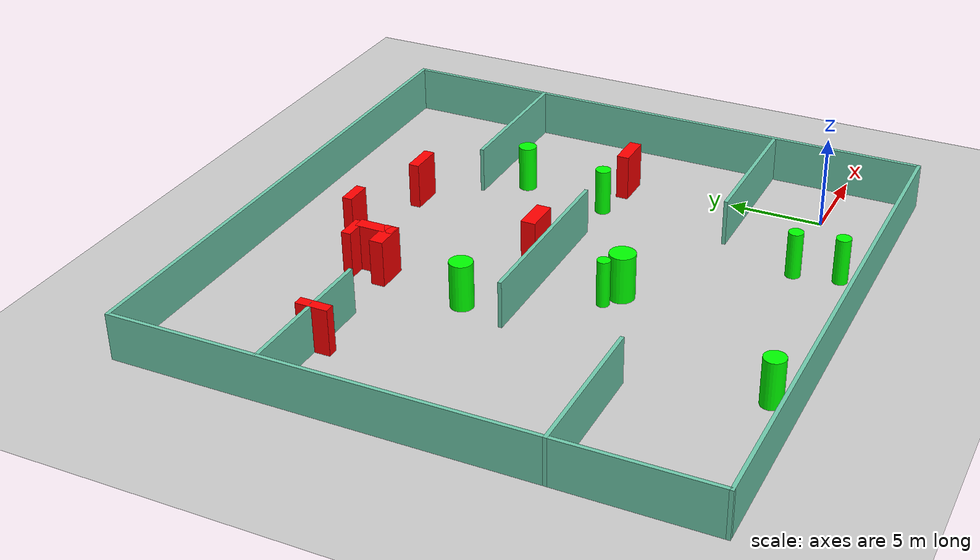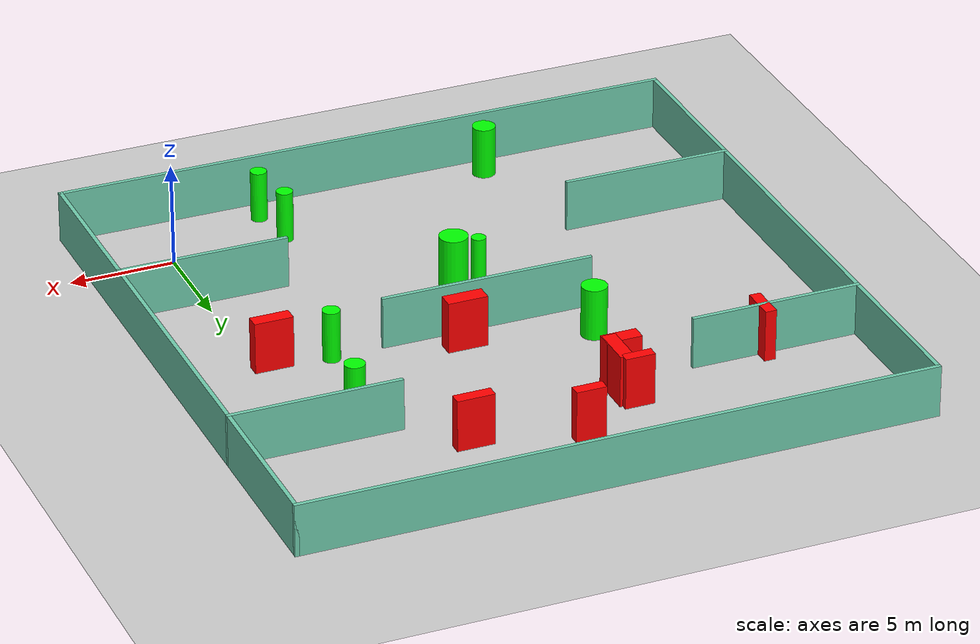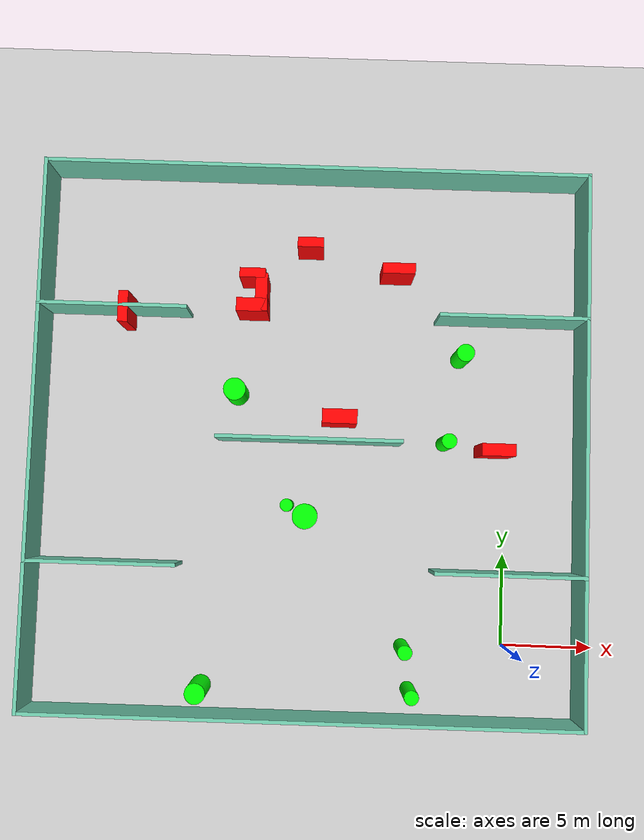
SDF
<sdf version="1.7">
 <world name="default">
  <light name="sun" type="directional">
   <pose>0 0 10 0 -0 0</pose>
   <diffuse>0.8 0.8 0.8 1</diffuse>
   <specular>0.2 0.2 0.2 1</specular>
   <attenuation>
    <range>1000</range>
    <constant>0.9</constant>
    <linear>0.01</linear>
    <quadratic>0.001</quadratic>
   </attenuation>
   <direction>-0.5 0.1 -0.9</direction>
   <spot><inner_angle>0</inner_angle><outer_angle>0</outer_angle><falloff>0</falloff></spot>
  </light>
  <model name="ground_plane">
   <static>1</static>
   <link name="link">
    <collision name="collision">
     <geometry><plane><normal>0 0 1</normal><size>100 100</size></plane></geometry>
     <surface>
      <contact><collide_bitmask>65535</collide_bitmask></contact>
      <friction><ode><mu>100</mu><mu2>50</mu2></ode></friction>
     </surface>
    </collision>
    <visual name="visual">
     <cast_shadows>0</cast_shadows>
     <geometry><plane><normal>0 0 1</normal><size>100 100</size></plane></geometry>
     <material>
      <script><uri>file://media/materials/scripts/gazebo.material</uri><name>Gazebo/Grey</name></script>
     </material>
    </visual>
   </link>
  </model>
  <gravity>0 0 -9.8</gravity>
  <magnetic_field>6e-06 2.3e-05 -4.2e-05</magnetic_field>
  <atmosphere type="adiabatic"/>
  <physics type="ode">
   <max_step_size>0.001</max_step_size>
   <real_time_factor>1</real_time_factor>
   <real_time_update_rate>1000</real_time_update_rate>
  </physics>
  <scene><ambient>0.4 0.4 0.4 1</ambient><background>0.7 0.7 0.7 1</background><shadows>1</shadows></scene>
  <spherical_coordinates>
   <surface_model>EARTH_WGS84</surface_model>
   <latitude_deg>0</latitude_deg>
   <longitude_deg>0</longitude_deg>
   <elevation>0</elevation>
   <heading_deg>0</heading_deg>
  </spherical_coordinates>
  <model name="my_base_walls">
   <link name="Wall_10">
    <collision name="Wall_10_Collision">
     <geometry><box><size>8.2 0.2 2.5</size></box></geometry>
     <pose>0 0 1.25 0 -0 0</pose>
    </collision>
    <visual name="Wall_10_Visual">
     <pose>0 0 1.25 0 -0 0</pose>
     <geometry><box><size>8.2 0.2 2.5</size></box></geometry>
     <material>
      <script><uri>file://media/materials/scripts/gazebo.material</uri><name>Gazebo/Grey</name></script>
      <ambient>0.435294 0.796078 0.67451 1</ambient>
     </material>
     <meta><layer>0</layer></meta>
    </visual>
    <pose>-11 -7 0 0 -0 0</pose>
   </link>
   <link name="Wall_12">
    <collision name="Wall_12_Collision">
     <geometry><box><size>8.2 0.2 2.5</size></box></geometry>
     <pose>0 0 1.25 0 -0 0</pose>
    </collision>
    <visual name="Wall_12_Visual">
     <pose>0 0 1.25 0 -0 0</pose>
     <geometry><box><size>8.2 0.2 2.5</size></box></geometry>
     <material>
      <script><uri>file://media/materials/scripts/gazebo.material</uri><name>Gazebo/Grey</name></script>
      <ambient>0.435294 0.796078 0.67451 1</ambient>
     </material>
     <meta><layer>0</layer></meta>
    </visual>
    <pose>-11 7 0 0 -0 0</pose>
   </link>
   <link name="Wall_14">
    <collision name="Wall_14_Collision">
     <geometry><box><size>8.2 0.2 2.5</size></box></geometry>
     <pose>0 0 1.25 0 -0 0</pose>
    </collision>
    <visual name="Wall_14_Visual">
     <pose>0 0 1.25 0 -0 0</pose>
     <geometry><box><size>8.2 0.2 2.5</size></box></geometry>
     <material>
      <script><uri>file://media/materials/scripts/gazebo.material</uri><name>Gazebo/Grey</name></script>
      <ambient>0.435294 0.796078 0.67451 1</ambient>
     </material>
     <meta><layer>0</layer></meta>
    </visual>
    <pose>11 7 0 0 -0 3.14159</pose>
   </link>
   <link name="Wall_16">
    <collision name="Wall_16_Collision">
     <geometry><box><size>10.2 0.2 2.5</size></box></geometry>
     <pose>0 0 1.25 0 -0 0</pose>
    </collision>
    <visual name="Wall_16_Visual">
     <pose>0 0 1.25 0 -0 0</pose>
     <geometry><box><size>10.2 0.2 2.5</size></box></geometry>
     <material>
      <script><uri>file://media/materials/scripts/gazebo.material</uri><name>Gazebo/Grey</name></script>
      <ambient>0.435294 0.796078 0.67451 1</ambient>
     </material>
     <meta><layer>0</layer></meta>
    </visual>
    <pose>0 0 0 0 -0 3.14159</pose>
   </link>
   <link name="Wall_2">
    <collision name="Wall_2_Collision">
     <geometry><box><size>30.2 0.2 2.5</size></box></geometry>
     <pose>0 0 1.25 0 -0 0</pose>
    </collision>
    <visual name="Wall_2_Visual">
     <pose>0 0 1.25 0 -0 0</pose>
     <geometry><box><size>30.2 0.2 2.5</size></box></geometry>
     <material>
      <script><uri>file://media/materials/scripts/gazebo.material</uri><name>Gazebo/Grey</name></script>
      <ambient>0.435294 0.796078 0.67451 1</ambient>
     </material>
     <meta><layer>0</layer></meta>
    </visual>
    <pose>0 -15 0 0 -0 3.14159</pose>
   </link>
   <link name="Wall_3">
    <collision name="Wall_3_Collision">
     <geometry><box><size>30.2 0.2 2.5</size></box></geometry>
     <pose>0 0 1.25 0 -0 0</pose>
    </collision>
    <visual name="Wall_3_Visual">
     <pose>0 0 1.25 0 -0 0</pose>
     <geometry><box><size>30.2 0.2 2.5</size></box></geometry>
     <material>
      <script><uri>file://media/materials/scripts/gazebo.material</uri><name>Gazebo/Grey</name></script>
      <ambient>0.435294 0.796078 0.67451 1</ambient>
     </material>
     <meta><layer>0</layer></meta>
    </visual>
    <pose>-15 0 0 0 -0 1.5708</pose>
   </link>
   <link name="Wall_4">
    <collision name="Wall_4_Collision">
     <geometry><box><size>30.2 0.2 2.5</size></box></geometry>
     <pose>0 0 1.25 0 -0 0</pose>
    </collision>
    <visual name="Wall_4_Visual">
     <pose>0 0 1.25 0 -0 0</pose>
     <geometry><box><size>30.2 0.2 2.5</size></box></geometry>
     <material>
      <script><uri>file://media/materials/scripts/gazebo.material</uri><name>Gazebo/Grey</name></script>
      <ambient>0.435294 0.796078 0.67451 1</ambient>
     </material>
     <meta><layer>0</layer></meta>
    </visual>
    <pose>0 15 0 0 -0 0</pose>
   </link>
   <link name="Wall_6">
    <collision name="Wall_6_Collision">
     <geometry><box><size>30.2 0.2 2.5</size></box></geometry>
     <pose>0 0 1.25 0 -0 0</pose>
    </collision>
    <visual name="Wall_6_Visual">
     <pose>0 0 1.25 0 -0 0</pose>
     <geometry><box><size>30.2 0.2 2.5</size></box></geometry>
     <material>
      <script><uri>file://media/materials/scripts/gazebo.material</uri><name>Gazebo/Grey</name></script>
      <ambient>0.435294 0.796078 0.67451 1</ambient>
     </material>
     <meta><layer>0</layer></meta>
    </visual>
    <pose>15 0 0 0 -0 1.5708</pose>
   </link>
   <link name="Wall_8">
    <collision name="Wall_8_Collision">
     <geometry><box><size>8.2 0.2 2.5</size></box></geometry>
     <pose>0 0 1.25 0 -0 0</pose>
    </collision>
    <visual name="Wall_8_Visual">
     <pose>0 0 1.25 0 -0 0</pose>
     <geometry><box><size>8.2 0.2 2.5</size></box></geometry>
     <material>
      <script><uri>file://media/materials/scripts/gazebo.material</uri><name>Gazebo/Grey</name></script>
      <ambient>0.435294 0.796078 0.67451 1</ambient>
     </material>
     <meta><layer>0</layer></meta>
    </visual>
    <pose>11 -7 0 0 -0 3.14159</pose>
   </link>
   <static>1</static>
   <pose>-11 11 0 0 -0 0</pose>
  </model>
  <model name="cylinder1">
   <static>1</static>
   <link name="link">
    <inertial>
     <mass>1</mass>
     <inertia><ixx>0.5</ixx><ixy>0</ixy><ixz>0</ixz><iyy>0.5</iyy><iyz>0</iyz><izz>1</izz></inertia>
    </inertial>
    <collision name="collision">
     <geometry><cylinder><radius>0.48171214003020424</radius><length>2.5</length></cylinder></geometry>
    </collision>
    <visual name="visual">
     <geometry><cylinder><radius>0.48171214003020424</radius><length>2.5</length></cylinder></geometry>
     <material>
      <ambient>0 1 0 1</ambient>
      <diffuse>0 1 0 1</diffuse>
      <specular>0.1 0.1 0.1 1</specular>
      <emissive>0 0 0 0</emissive>
     </material>
    </visual>
   </link>
   <pose>-2.650195115834176 15.918647360431855 1.25 0 0 0</pose>
  </model>
  <model name="cylinder2">
   <static>1</static>
   <link name="link">
    <inertial>
     <mass>1</mass>
     <inertia><ixx>0.5</ixx><ixy>0</ixy><ixz>0</ixz><iyy>0.5</iyy><iyz>0</iyz><izz>1</izz></inertia>
    </inertial>
    <collision name="collision">
     <geometry><cylinder><radius>0.41274147682534174</radius><length>2.5</length></cylinder></geometry>
    </collision>
    <visual name="visual">
     <geometry><cylinder><radius>0.41274147682534174</radius><length>2.5</length></cylinder></geometry>
     <material>
      <ambient>0 1 0 1</ambient>
      <diffuse>0 1 0 1</diffuse>
      <specular>0.1 0.1 0.1 1</specular>
      <emissive>0 0 0 0</emissive>
     </material>
    </visual>
   </link>
   <pose>-3.4428131654437664 11.093458835801629 1.25 0 0 0</pose>
  </model>
  <model name="cylinder3">
   <static>1</static>
   <link name="link">
    <inertial>
     <mass>1</mass>
     <inertia><ixx>0.5</ixx><ixy>0</ixy><ixz>0</ixz><iyy>0.5</iyy><iyz>0</iyz><izz>1</izz></inertia>
    </inertial>
    <collision name="collision">
     <geometry><cylinder><radius>0.6100292864275196</radius><length>2.5</length></cylinder></geometry>
    </collision>
    <visual name="visual">
     <geometry><cylinder><radius>0.6100292864275196</radius><length>2.5</length></cylinder></geometry>
     <material>
      <ambient>0 1 0 1</ambient>
      <diffuse>0 1 0 1</diffuse>
      <specular>0.1 0.1 0.1 1</specular>
      <emissive>0 0 0 0</emissive>
     </material>
    </visual>
   </link>
   <pose>-15.117886761860973 13.547605376320817 1.25 0 0 0</pose>
  </model>
  <model name="cylinder4">
   <static>1</static>
   <link name="link">
    <inertial>
     <mass>1</mass>
     <inertia><ixx>0.5</ixx><ixy>0</ixy><ixz>0</ixz><iyy>0.5</iyy><iyz>0</iyz><izz>1</izz></inertia>
    </inertial>
    <collision name="collision">
     <geometry><cylinder><radius>0.6812378935786482</radius><length>2.5</length></cylinder></geometry>
    </collision>
    <visual name="visual">
     <geometry><cylinder><radius>0.6812378935786482</radius><length>2.5</length></cylinder></geometry>
     <material>
      <ambient>0 1 0 1</ambient>
      <diffuse>0 1 0 1</diffuse>
      <specular>0.1 0.1 0.1 1</specular>
      <emissive>0 0 0 0</emissive>
     </material>
    </visual>
   </link>
   <pose>-11.09788748037177 6.8084319350384686 1.25 0 0 0</pose>
  </model>
  <model name="cylinder5">
   <static>1</static>
   <link name="link">
    <inertial>
     <mass>1</mass>
     <inertia><ixx>0.5</ixx><ixy>0</ixy><ixz>0</ixz><iyy>0.5</iyy><iyz>0</iyz><izz>1</izz></inertia>
    </inertial>
    <collision name="collision">
     <geometry><cylinder><radius>0.5543658335125627</radius><length>2.5</length></cylinder></geometry>
    </collision>
    <visual name="visual">
     <geometry><cylinder><radius>0.5543658335125627</radius><length>2.5</length></cylinder></geometry>
     <material>
      <ambient>0 1 0 1</ambient>
      <diffuse>0 1 0 1</diffuse>
      <specular>0.1 0.1 0.1 1</specular>
      <emissive>0 0 0 0</emissive>
     </material>
    </visual>
   </link>
   <pose>-16.58014880581014 -2.678272176722756 1.25 0 0 0</pose>
  </model>
  <model name="cylinder6">
   <static>1</static>
   <link name="link">
    <inertial>
     <mass>1</mass>
     <inertia><ixx>0.5</ixx><ixy>0</ixy><ixz>0</ixz><iyy>0.5</iyy><iyz>0</iyz><izz>1</izz></inertia>
    </inertial>
    <collision name="collision">
     <geometry><cylinder><radius>0.34373362193548773</radius><length>2.5</length></cylinder></geometry>
    </collision>
    <visual name="visual">
     <geometry><cylinder><radius>0.34373362193548773</radius><length>2.5</length></cylinder></geometry>
     <material>
      <ambient>0 1 0 1</ambient>
      <diffuse>0 1 0 1</diffuse>
      <specular>0.1 0.1 0.1 1</specular>
      <emissive>0 0 0 0</emissive>
     </material>
    </visual>
   </link>
   <pose>-12.095678912463237 7.378022858119266 1.25 0 0 0</pose>
  </model>
  <model name="cylinder7">
   <static>1</static>
   <link name="link">
    <inertial>
     <mass>1</mass>
     <inertia><ixx>0.5</ixx><ixy>0</ixy><ixz>0</ixz><iyy>0.5</iyy><iyz>0</iyz><izz>1</izz></inertia>
    </inertial>
    <collision name="collision">
     <geometry><cylinder><radius>0.3930773407418814</radius><length>2.5</length></cylinder></geometry>
    </collision>
    <visual name="visual">
     <geometry><cylinder><radius>0.3930773407418814</radius><length>2.5</length></cylinder></geometry>
     <material>
      <ambient>0 1 0 1</ambient>
      <diffuse>0 1 0 1</diffuse>
      <specular>0.1 0.1 0.1 1</specular>
      <emissive>0 0 0 0</emissive>
     </material>
    </visual>
   </link>
   <pose>-5.165750554935723 -2.5274832502826383 1.25 0 0 0</pose>
  </model>
  <model name="cylinder8">
   <static>1</static>
   <link name="link">
    <inertial>
     <mass>1</mass>
     <inertia><ixx>0.5</ixx><ixy>0</ixy><ixz>0</ixz><iyy>0.5</iyy><iyz>0</iyz><izz>1</izz></inertia>
    </inertial>
    <collision name="collision">
     <geometry><cylinder><radius>0.3948859938622029</radius><length>2.5</length></cylinder></geometry>
    </collision>
    <visual name="visual">
     <geometry><cylinder><radius>0.3948859938622029</radius><length>2.5</length></cylinder></geometry>
     <material>
      <ambient>0 1 0 1</ambient>
      <diffuse>0 1 0 1</diffuse>
      <specular>0.1 0.1 0.1 1</specular>
      <emissive>0 0 0 0</emissive>
     </material>
    </visual>
   </link>
   <pose>-5.5703322093678675 -0.20406651806221454 1.25 0 0 0</pose>
  </model>
  <model name="box1">
   <static>1</static>
   <link name="link">
    <inertial>
     <mass>1</mass>
     <inertia><ixx>0.083</ixx><ixy>0</ixy><ixz>0</ixz><iyy>0.083</iyy><iyz>0</iyz><izz>0.083</izz></inertia>
    </inertial>
    <collision name="collision">
     <geometry><box><size>0.5398639020916315 1.7150849172938112 2.5</size></box></geometry>
    </collision>
    <visual name="visual">
     <geometry><box><size>0.5398639020916315 1.7150849172938112 2.5</size></box></geometry>
     <material>
      <ambient>1 0 0 1</ambient>
      <diffuse>1 0 0 1</diffuse>
      <specular>0.1 0.1 0.1 1</specular>
      <emissive>0 0 0 0</emissive>
     </material>
    </visual>
    <sensor name="my_contact" type="contact">
     <contact><collision>box_collision</collision><topic>__default_topic__</topic></contact>
    </sensor>
   </link>
   <pose>-21.37468289469193 17.911963577974717 1.25 0 0 0</pose>
  </model>
  <model name="box2">
   <static>1</static>
   <link name="link">
    <inertial>
     <mass>1</mass>
     <inertia><ixx>0.083</ixx><ixy>0</ixy><ixz>0</ixz><iyy>0.083</iyy><iyz>0</iyz><izz>0.083</izz></inertia>
    </inertial>
    <collision name="collision">
     <geometry><box><size>1.4128211786998568 0.5187156554241711 2.5</size></box></geometry>
    </collision>
    <visual name="visual">
     <geometry><box><size>1.4128211786998568 0.5187156554241711 2.5</size></box></geometry>
     <material>
      <ambient>1 0 0 1</ambient>
      <diffuse>1 0 0 1</diffuse>
      <specular>0.1 0.1 0.1 1</specular>
      <emissive>0 0 0 0</emissive>
     </material>
    </visual>
    <sensor name="my_contact" type="contact">
     <contact><collision>box_collision</collision><topic>__default_topic__</topic></contact>
    </sensor>
   </link>
   <pose>-14.379825166951493 19.98810545161919 1.25 0 0 0</pose>
  </model>
  <model name="box3">
   <static>1</static>
   <link name="link">
    <inertial>
     <mass>1</mass>
     <inertia><ixx>0.083</ixx><ixy>0</ixy><ixz>0</ixz><iyy>0.083</iyy><iyz>0</iyz><izz>0.083</izz></inertia>
    </inertial>
    <collision name="collision">
     <geometry><box><size>1.4329314415193508 0.5405812941649307 2.5</size></box></geometry>
    </collision>
    <visual name="visual">
     <geometry><box><size>1.4329314415193508 0.5405812941649307 2.5</size></box></geometry>
     <material>
      <ambient>1 0 0 1</ambient>
      <diffuse>1 0 0 1</diffuse>
      <specular>0.1 0.1 0.1 1</specular>
      <emissive>0 0 0 0</emissive>
     </material>
    </visual>
    <sensor name="my_contact" type="contact">
     <contact><collision>box_collision</collision><topic>__default_topic__</topic></contact>
    </sensor>
   </link>
   <pose>-11.24790779307347 21.787323575580306 1.25 0 0 0</pose>
  </model>
  <model name="box4">
   <static>1</static>
   <link name="link">
    <inertial>
     <mass>1</mass>
     <inertia><ixx>0.083</ixx><ixy>0</ixy><ixz>0</ixz><iyy>0.083</iyy><iyz>0</iyz><izz>0.083</izz></inertia>
    </inertial>
    <collision name="collision">
     <geometry><box><size>0.6646400151022922 2.060212426096369 2.5</size></box></geometry>
    </collision>
    <visual name="visual">
     <geometry><box><size>0.6646400151022922 2.060212426096369 2.5</size></box></geometry>
     <material>
      <ambient>1 0 0 1</ambient>
      <diffuse>1 0 0 1</diffuse>
      <specular>0.1 0.1 0.1 1</specular>
      <emissive>0 0 0 0</emissive>
     </material>
    </visual>
    <sensor name="my_contact" type="contact">
     <contact><collision>box_collision</collision><topic>__default_topic__</topic></contact>
    </sensor>
   </link>
   <pose>-13.865128941443865 18.93841428000963 1.25 0 0 0</pose>
  </model>
  <model name="box5">
   <static>1</static>
   <link name="link">
    <inertial>
     <mass>1</mass>
     <inertia><ixx>0.083</ixx><ixy>0</ixy><ixz>0</ixz><iyy>0.083</iyy><iyz>0</iyz><izz>0.083</izz></inertia>
    </inertial>
    <collision name="collision">
     <geometry><box><size>1.7896162814242584 0.5808474023947832 2.5</size></box></geometry>
    </collision>
    <visual name="visual">
     <geometry><box><size>1.7896162814242584 0.5808474023947832 2.5</size></box></geometry>
     <material>
      <ambient>1 0 0 1</ambient>
      <diffuse>1 0 0 1</diffuse>
      <specular>0.1 0.1 0.1 1</specular>
      <emissive>0 0 0 0</emissive>
     </material>
    </visual>
    <sensor name="my_contact" type="contact">
     <contact><collision>box_collision</collision><topic>__default_topic__</topic></contact>
    </sensor>
   </link>
   <pose>-6.377827426796685 20.479102518825343 1.25 0 0 0</pose>
  </model>
  <model name="box6">
   <static>1</static>
   <link name="link">
    <inertial>
     <mass>1</mass>
     <inertia><ixx>0.083</ixx><ixy>0</ixy><ixz>0</ixz><iyy>0.083</iyy><iyz>0</iyz><izz>0.083</izz></inertia>
    </inertial>
    <collision name="collision">
     <geometry><box><size>1.8446976984532901 0.6675976759900695 2.5</size></box></geometry>
    </collision>
    <visual name="visual">
     <geometry><box><size>1.8446976984532901 0.6675976759900695 2.5</size></box></geometry>
     <material>
      <ambient>1 0 0 1</ambient>
      <diffuse>1 0 0 1</diffuse>
      <specular>0.1 0.1 0.1 1</specular>
      <emissive>0 0 0 0</emissive>
     </material>
    </visual>
    <sensor name="my_contact" type="contact">
     <contact><collision>box_collision</collision><topic>__default_topic__</topic></contact>
    </sensor>
   </link>
   <pose>-0.7597403232094422 10.71189722527928 1.25 0 0 0</pose>
  </model>
  <model name="box7">
   <static>1</static>
   <link name="link">
    <inertial>
     <mass>1</mass>
     <inertia><ixx>0.083</ixx><ixy>0</ixy><ixz>0</ixz><iyy>0.083</iyy><iyz>0</iyz><izz>0.083</izz></inertia>
    </inertial>
    <collision name="collision">
     <geometry><box><size>1.9069243326736203 0.7850218481190515 2.5</size></box></geometry>
    </collision>
    <visual name="visual">
     <geometry><box><size>1.9069243326736203 0.7850218481190515 2.5</size></box></geometry>
     <material>
      <ambient>1 0 0 1</ambient>
      <diffuse>1 0 0 1</diffuse>
      <specular>0.1 0.1 0.1 1</specular>
      <emissive>0 0 0 0</emissive>
     </material>
    </visual>
    <sensor name="my_contact" type="contact">
     <contact><collision>box_collision</collision><topic>__default_topic__</topic></contact>
    </sensor>
   </link>
   <pose>-9.38505867060649 12.257560735891404 1.25 0 0 0</pose>
  </model>
  <model name="box8">
   <static>1</static>
   <link name="link">
    <inertial>
     <mass>1</mass>
     <inertia><ixx>0.083</ixx><ixy>0</ixy><ixz>0</ixz><iyy>0.083</iyy><iyz>0</iyz><izz>0.083</izz></inertia>
    </inertial>
    <collision name="collision">
     <geometry><box><size>1.711302818467645 0.7350659110104825 2.5</size></box></geometry>
    </collision>
    <visual name="visual">
     <geometry><box><size>1.711302818467645 0.7350659110104825 2.5</size></box></geometry>
     <material>
      <ambient>1 0 0 1</ambient>
      <diffuse>1 0 0 1</diffuse>
      <specular>0.1 0.1 0.1 1</specular>
      <emissive>0 0 0 0</emissive>
     </material>
    </visual>
    <sensor name="my_contact" type="contact">
     <contact><collision>box_collision</collision><topic>__default_topic__</topic></contact>
    </sensor>
   </link>
   <pose>-14.355184813817791 18.217482100323284 1.25 0 0 0</pose>
  </model>
 </world>
</sdf>
